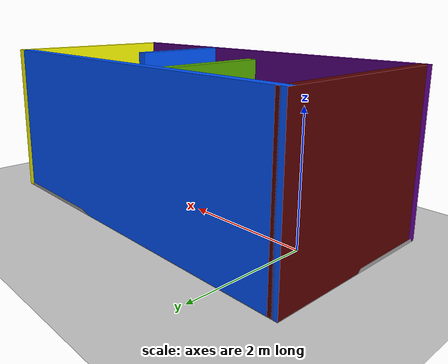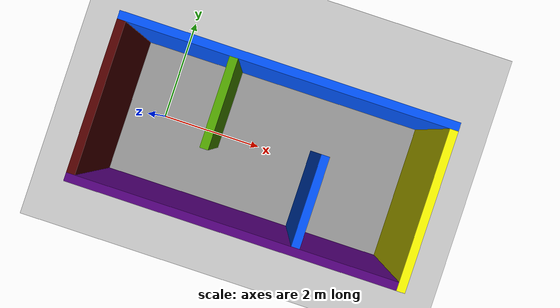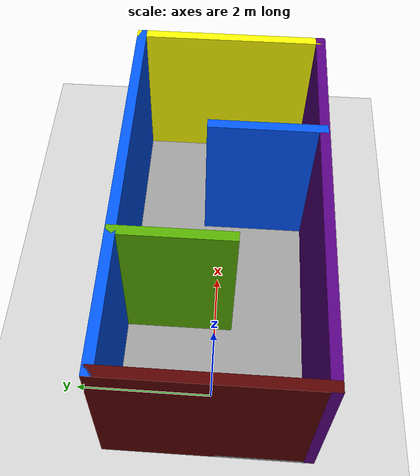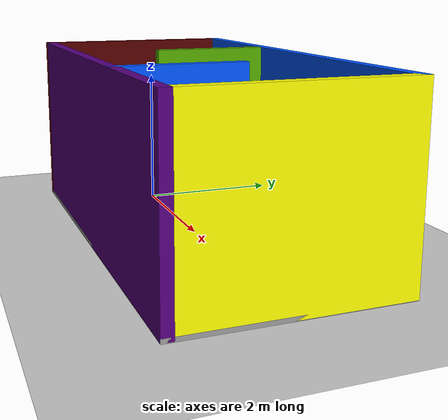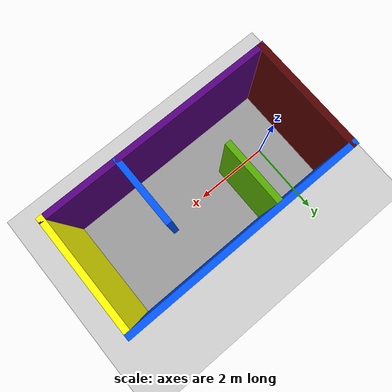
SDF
<sdf version='1.6'>
  <world name='default'>
  <plugin name="ros_interface_plugin" filename="librotors_gazebo_ros_interface_plugin.so"/>
    <light name='sun' type='directional'>
      <cast_shadows>1</cast_shadows>
      <pose frame=''>0 0 10 0 -0 0</pose>
      <diffuse>0.8 0.8 0.8 1</diffuse>
      <specular>0.2 0.2 0.2 1</specular>
      <attenuation>
        <range>1000</range>
        <constant>0.9</constant>
        <linear>0.01</linear>
        <quadratic>0.001</quadratic>
      </attenuation>
      <direction>-0.5 0.1 -0.9</direction>
    </light>
    <model name='ground_plane'>
      <static>1</static>
      <link name='link'>
        <collision name='collision'>
          <geometry>
            <plane>
              <normal>0 0 1</normal>
              <size>100 100</size>
            </plane>
          </geometry>
          <surface>
            <friction>
              <ode>
                <mu>100</mu>
                <mu2>50</mu2>
              </ode>
              <torsional>
                <ode/>
              </torsional>
            </friction>
            <contact>
              <ode/>
            </contact>
            <bounce/>
          </surface>
          <max_contacts>10</max_contacts>
        </collision>
        <visual name='visual'>
          <cast_shadows>0</cast_shadows>
          <geometry>
            <plane>
              <normal>0 0 1</normal>
              <size>100 100</size>
            </plane>
          </geometry>
          <material>
            <script>
              <uri>file://media/materials/scripts/gazebo.material</uri>
              <name>Gazebo/Grey</name>
            </script>
          </material>
        </visual>
        <self_collide>0</self_collide>
        <enable_wind>0</enable_wind>
        <kinematic>0</kinematic>
      </link>
    </model>
    <gravity>0 0 -9.8</gravity>
    <magnetic_field>6e-06 2.3e-05 -4.2e-05</magnetic_field>
    <atmosphere type='adiabatic'/>
    <physics name='default_physics' default='0' type='ode'>
      <max_step_size>0.001</max_step_size>
      <real_time_factor>1</real_time_factor>
      <real_time_update_rate>1000</real_time_update_rate>
    </physics>
    <scene>
      <ambient>0.4 0.4 0.4 1</ambient>
      <background>0.7 0.7 0.7 1</background>
      <shadows>1</shadows>
    </scene>
    <wind/>
    <spherical_coordinates>
      <surface_model>EARTH_WGS84</surface_model>
      <latitude_deg>0</latitude_deg>
      <longitude_deg>0</longitude_deg>
      <elevation>0</elevation>
      <heading_deg>0</heading_deg>
    </spherical_coordinates>
    <model name='static'>
      <pose frame=''>2.1 0 0 0 -0 0</pose>
      <link name='link_0'>
      <pose frame=''>0 0 2.6 0 -0 0</pose>
      <inertial>
        <mass>1</mass>
        <inertia>
          <ixx>0.166667</ixx>
          <ixy>0</ixy>
          <ixz>0</ixz>
          <iyy>0.166667</iyy>
          <iyz>0</iyz>
          <izz>0.166667</izz>
        </inertia>
        <pose frame=''>0 0 0 0 -0 0</pose>
      </inertial>
      <self_collide>0</self_collide>
      <kinematic>0</kinematic>
      <visual name='ModelPreview_4::link_0::visual_1'>
        <pose frame=''>0 0 -0.1 0 -0 0</pose>
        <geometry>
          <box>
            <size>6 3 0.1</size>
          </box>
        </geometry>
        <material>
          <lighting>1</lighting>
          <script>
            <uri>file://media/materials/scripts/gazebo.material</uri>
            <name>Gazebo/Grey</name>
          </script>
          <ambient>0.3 0.3 0.3 1</ambient>
          <diffuse>0.7 0.7 0.7 1</diffuse>
          <specular>0.01 0.01 0.01 1</specular>
          <emissive>0 0 0 1</emissive>
          <shader type='vertex'>
            <normal_map>__default__</normal_map>
          </shader>
        </material>
        <cast_shadows>1</cast_shadows>
        <transparency>1</transparency>
      </visual>
      <visual name='visual'>
        <pose frame=''>0 0 0 0 -0 0</pose>
        <geometry>
          <box>
            <size>6 3 0.1</size>
          </box>
        </geometry>
        <material>
          <lighting>1</lighting>
          <script>
            <uri>file://media/materials/scripts/gazebo.material</uri>
            <name>Gazebo/Grey</name>
          </script>
          <ambient>0.3 0.3 0.3 1</ambient>
          <diffuse>0.7 0.7 0.7 1</diffuse>
          <specular>0.01 0.01 0.01 1</specular>
          <emissive>0 0 0 1</emissive>
          <shader type='vertex'>
            <normal_map>__default__</normal_map>
          </shader>
        </material>
        <cast_shadows>1</cast_shadows>
        <transparency>1</transparency>
      </visual>
      <collision name='collision'>
        <laser_retro>0</laser_retro>
        <max_contacts>10</max_contacts>
        <pose frame=''>0 0 0 0 -0 0</pose>
        <geometry>
          <box>
            <size>6 3 0.1</size>
          </box>
        </geometry>
        <surface>
          <friction>
            <ode>
              <mu>1</mu>
              <mu2>1</mu2>
              <fdir1>0 0 0</fdir1>
              <slip1>0</slip1>
              <slip2>0</slip2>
            </ode>
            <torsional>
              <coefficient>1</coefficient>
              <patch_radius>0</patch_radius>
              <surface_radius>0</surface_radius>
              <use_patch_radius>1</use_patch_radius>
              <ode>
                <slip>0</slip>
              </ode>
            </torsional>
          </friction>
          <bounce>
            <restitution_coefficient>0</restitution_coefficient>
            <threshold>1e+06</threshold>
          </bounce>
          <contact>
            <collide_without_contact>0</collide_without_contact>
            <collide_without_contact_bitmask>1</collide_without_contact_bitmask>
            <collide_bitmask>1</collide_bitmask>
            <ode>
              <soft_cfm>0</soft_cfm>
              <soft_erp>0.2</soft_erp>
              <kp>1e+13</kp>
              <kd>1</kd>
              <max_vel>0.01</max_vel>
              <min_depth>0</min_depth>
            </ode>
            <bullet>
              <split_impulse>1</split_impulse>
              <split_impulse_penetration_threshold>-0.01</split_impulse_penetration_threshold>
              <soft_cfm>0</soft_cfm>
              <soft_erp>0.2</soft_erp>
              <kp>1e+13</kp>
              <kd>1</kd>
            </bullet>
          </contact>
        </surface>
      </collision>
    </link>
    <link name='link_0_clone'>
      <pose frame=''>0 0 -0 0 -0 0</pose>
      <inertial>
        <mass>1</mass>
        <inertia>
          <ixx>0.166667</ixx>
          <ixy>0</ixy>
          <ixz>0</ixz>
          <iyy>0.166667</iyy>
          <iyz>0</iyz>
          <izz>0.166667</izz>
        </inertia>
        <pose frame=''>0 0 0 0 -0 0</pose>
      </inertial>
      <self_collide>0</self_collide>
      <kinematic>0</kinematic>
      <gravity>1</gravity>
      <visual name='ModelPreview_4::link_0_clone::visual_1'>
        <pose frame=''>0 0 0 0 -0 0</pose>
        <geometry>
          <box>
            <size>6 3 0.1</size>
          </box>
        </geometry>
        <material>
          <lighting>1</lighting>
          <script>
            <uri>file://media/materials/scripts/gazebo.material</uri>
            <name>Gazebo/Grey</name>
          </script>
          <ambient>1 1 1 1</ambient>
          <diffuse>1 1 1 1</diffuse>
          <specular>0.01 0.01 0.01 1</specular>
          <emissive>0 0 0 1</emissive>
          <shader type='vertex'>
            <normal_map>__default__</normal_map>
          </shader>
        </material>
        <cast_shadows>1</cast_shadows>
        <transparency>0</transparency>
      </visual>
      <collision name='collision'>
        <laser_retro>0</laser_retro>
        <max_contacts>10</max_contacts>
        <pose frame=''>0 0 0 0 -0 0</pose>
        <geometry>
          <box>
            <size>6 3 0.1</size>
          </box>
        </geometry>
        <surface>
          <friction>
            <ode>
              <mu>1</mu>
              <mu2>1</mu2>
              <fdir1>0 0 0</fdir1>
              <slip1>0</slip1>
              <slip2>0</slip2>
            </ode>
            <torsional>
              <coefficient>1</coefficient>
              <patch_radius>0</patch_radius>
              <surface_radius>0</surface_radius>
              <use_patch_radius>1</use_patch_radius>
              <ode>
                <slip>0</slip>
              </ode>
            </torsional>
          </friction>
          <bounce>
            <restitution_coefficient>0</restitution_coefficient>
            <threshold>1e+06</threshold>
          </bounce>
          <contact>
            <collide_without_contact>0</collide_without_contact>
            <collide_without_contact_bitmask>1</collide_without_contact_bitmask>
            <collide_bitmask>1</collide_bitmask>
            <ode>
              <soft_cfm>0</soft_cfm>
              <soft_erp>0.2</soft_erp>
              <kp>1e+13</kp>
              <kd>1</kd>
              <max_vel>0.01</max_vel>
              <min_depth>0</min_depth>
            </ode>
            <bullet>
              <split_impulse>1</split_impulse>
              <split_impulse_penetration_threshold>-0.01</split_impulse_penetration_threshold>
              <soft_cfm>0</soft_cfm>
              <soft_erp>0.2</soft_erp>
              <kp>1e+13</kp>
              <kd>1</kd>
            </bullet>
          </contact>
        </surface>
      </collision>
    </link>
      <link name='Wall_1'>
        <collision name='Wall_1_Collision'>
          <geometry>
            <box>
              <size>6 0.15 2.5</size>
            </box>
          </geometry>
          <pose frame=''>0 0 1.25 0 -0 0</pose>
          <max_contacts>10</max_contacts>
          <surface>
            <contact>
              <ode/>
            </contact>
            <bounce/>
            <friction>
              <torsional>
                <ode/>
              </torsional>
              <ode/>
            </friction>
          </surface>
        </collision>
        <visual name='Wall_1_Visual'>
          <pose frame=''>0 0 1.25 0 -0 0</pose>
          <geometry>
            <box>
              <size>6 0.15 2.5</size>
            </box>
          </geometry>
          <material>
            <script>
              <uri>file://media/materials/scripts/gazebo.material</uri>
              <name>Gazebo/Grey</name>
            </script>
            <ambient>0 0.333333 1 1</ambient>
          </material>
          <meta>
            <layer>0</layer>
          </meta>
        </visual>
        <pose frame=''>-0 1.425 0 0 -0 0</pose>
        <self_collide>0</self_collide>
        <enable_wind>0</enable_wind>
        <kinematic>0</kinematic>
      </link>
      <link name='Wall_2'>
        <collision name='Wall_2_Collision'>
          <geometry>
            <box>
              <size>3 0.15 2.5</size>
            </box>
          </geometry>
          <pose frame=''>0 0 1.25 0 -0 0</pose>
          <max_contacts>10</max_contacts>
          <surface>
            <contact>
              <ode/>
            </contact>
            <bounce/>
            <friction>
              <torsional>
                <ode/>
              </torsional>
              <ode/>
            </friction>
          </surface>
        </collision>
        <visual name='Wall_2_Visual'>
          <pose frame=''>0 0 1.25 0 -0 0</pose>
          <geometry>
            <box>
              <size>3 0.15 2.5</size>
            </box>
          </geometry>
          <material>
            <script>
              <uri>file://media/materials/scripts/gazebo.material</uri>
              <name>Gazebo/Grey</name>
            </script>
            <ambient>1 1 0 1</ambient>
          </material>
          <meta>
            <layer>0</layer>
          </meta>
        </visual>
        <pose frame=''>2.925 0 0 0 -0 -1.5708</pose>
        <self_collide>0</self_collide>
        <enable_wind>0</enable_wind>
        <kinematic>0</kinematic>
      </link>
      <link name='Wall_3'>
        <collision name='Wall_3_Collision'>
          <geometry>
            <box>
              <size>6 0.15 2.5</size>
            </box>
          </geometry>
          <pose frame=''>0 0 1.25 0 -0 0</pose>
          <max_contacts>10</max_contacts>
          <surface>
            <contact>
              <ode/>
            </contact>
            <bounce/>
            <friction>
              <torsional>
                <ode/>
              </torsional>
              <ode/>
            </friction>
          </surface>
        </collision>
        <visual name='Wall_3_Visual'>
          <pose frame=''>0 0 1.25 0 -0 0</pose>
          <geometry>
            <box>
              <size>6 0.15 2.5</size>
            </box>
          </geometry>
          <material>
            <script>
              <uri>file://media/materials/scripts/gazebo.material</uri>
              <name>Gazebo/Grey</name>
            </script>
            <ambient>0.333333 0 0.498039 1</ambient>
          </material>
          <meta>
            <layer>0</layer>
          </meta>
        </visual>
        <pose frame=''>-0 -1.425 0 0 -0 3.14159</pose>
        <self_collide>0</self_collide>
        <enable_wind>0</enable_wind>
        <kinematic>0</kinematic>
      </link>
      <link name='Wall_4'>
        <collision name='Wall_4_Collision'>
          <geometry>
            <box>
              <size>3 0.15 2.5</size>
            </box>
          </geometry>
          <pose frame=''>0 0 1.25 0 -0 0</pose>
          <max_contacts>10</max_contacts>
          <surface>
            <contact>
              <ode/>
            </contact>
            <bounce/>
            <friction>
              <torsional>
                <ode/>
              </torsional>
              <ode/>
            </friction>
          </surface>
        </collision>
        <visual name='Wall_4_Visual'>
          <pose frame=''>0 0 1.25 0 -0 0</pose>
          <geometry>
            <box>
              <size>3 0.15 2.5</size>
            </box>
          </geometry>
          <material>
            <script>
              <uri>file://media/materials/scripts/gazebo.material</uri>
              <name>Gazebo/Grey</name>
            </script>
            <ambient>0.333333 0 0 1</ambient>
          </material>
          <meta>
            <layer>0</layer>
          </meta>
        </visual>
        <pose frame=''>-2.925 0 0 0 -0 1.5708</pose>
        <self_collide>0</self_collide>
        <enable_wind>0</enable_wind>
        <kinematic>0</kinematic>
      </link>
      <link name='Wall_6'>
        <collision name='Wall_6_Collision'>
          <geometry>
            <box>
              <size>1.75 0.15 2.5</size>
            </box>
          </geometry>
          <pose frame=''>0 0 1.25 0 -0 0</pose>
          <max_contacts>10</max_contacts>
          <surface>
            <contact>
              <ode/>
            </contact>
            <bounce/>
            <friction>
              <torsional>
                <ode/>
              </torsional>
              <ode/>
            </friction>
          </surface>
        </collision>
        <visual name='Wall_6_Visual'>
          <pose frame=''>0 0 1.25 0 -0 0</pose>
          <geometry>
            <box>
              <size>1.75 0.15 2.5</size>
            </box>
          </geometry>
          <material>
            <script>
              <uri>file://media/materials/scripts/gazebo.material</uri>
              <name>Gazebo/Grey</name>
            </script>
            <ambient>0.333333 0.666667 0 1</ambient>
          </material>
          <meta>
            <layer>0</layer>
          </meta>
        </visual>
        <pose frame=''>-0.945 0.615 0 0 -0 -1.5708</pose>
        <self_collide>0</self_collide>
        <enable_wind>0</enable_wind>
        <kinematic>0</kinematic>
      </link>
      <link name='Wall_9'>
        <collision name='Wall_9_Collision'>
          <geometry>
            <box>
              <size>1.75 0.15 2.5</size>
            </box>
          </geometry>
          <pose frame=''>0 0 1.25 0 -0 0</pose>
          <max_contacts>10</max_contacts>
          <surface>
            <contact>
              <ode/>
            </contact>
            <bounce/>
            <friction>
              <torsional>
                <ode/>
              </torsional>
              <ode/>
            </friction>
          </surface>
        </collision>
        <visual name='Wall_9_Visual'>
          <pose frame=''>0 0 1.25 0 -0 0</pose>
          <geometry>
            <box>
              <size>1.75 0.15 2.5</size>
            </box>
          </geometry>
          <material>
            <script>
              <uri>file://media/materials/scripts/gazebo.material</uri>
              <name>Gazebo/Grey</name>
            </script>
            <ambient>0 0.333333 1 1</ambient>
          </material>
          <meta>
            <layer>0</layer>
          </meta>
        </visual>
        <pose frame=''>1.025 -0.605 0 0 -0 1.5708</pose>
        <self_collide>0</self_collide>
        <enable_wind>0</enable_wind>
        <kinematic>0</kinematic>
      </link>
      <static>1</static>
    </model>
    <gui fullscreen='0'>
      <camera name='user_camera'>
        <pose frame=''>-2.11629 -1.05091 15.7803 0 1.5698 -3.13897</pose>
        <view_controller>orbit</view_controller>
        <projection_type>perspective</projection_type>
      </camera>
    </gui>
  </world>
</sdf>
